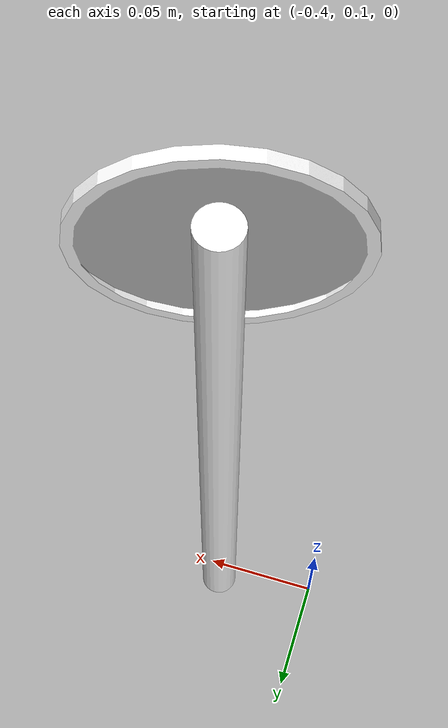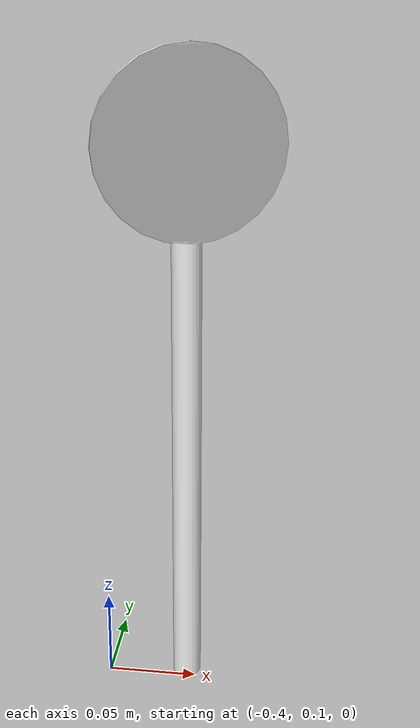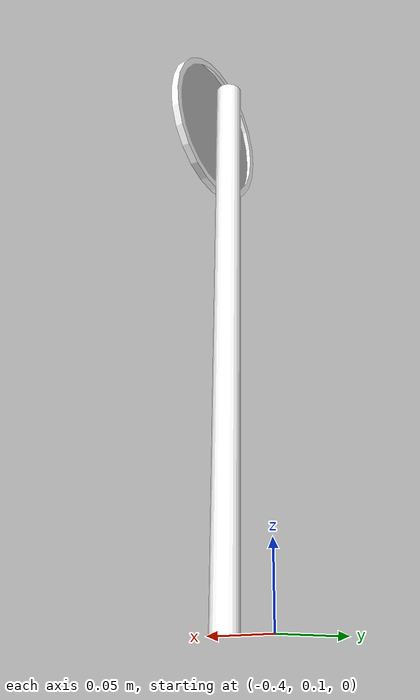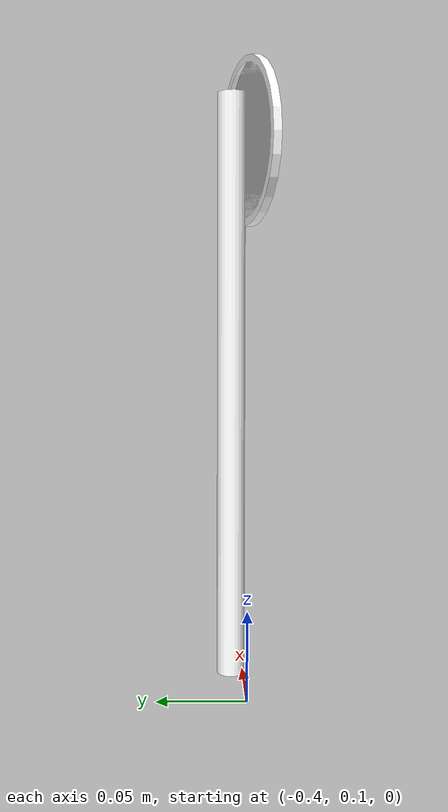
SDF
<?xml version='1.0'?>
<sdf version='1.7'>
  <model name='turn_back'>
	<static>true</static>
    <link name='link_0'>

		<collision name="collision">
		<geometry>
			<mesh>
				<uri>model://turn_back/mesh/model.dae</uri>
	            <scale>0.16 0.16 0.16</scale>
			</mesh>
		</geometry>
		</collision>

		<visual name="visual">
		<cast_shadows>true</cast_shadows>
		<geometry>
			<mesh>
				<uri>model://turn_back/mesh/model.dae</uri>
	            <scale>0.16 0.16 0.16</scale>
			</mesh>
		</geometry>
		</visual>
    </link>
  </model>
</sdf>
